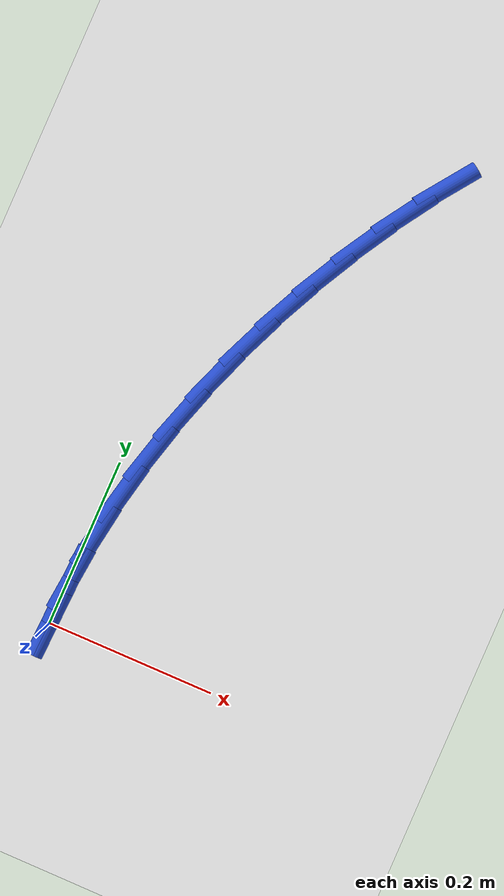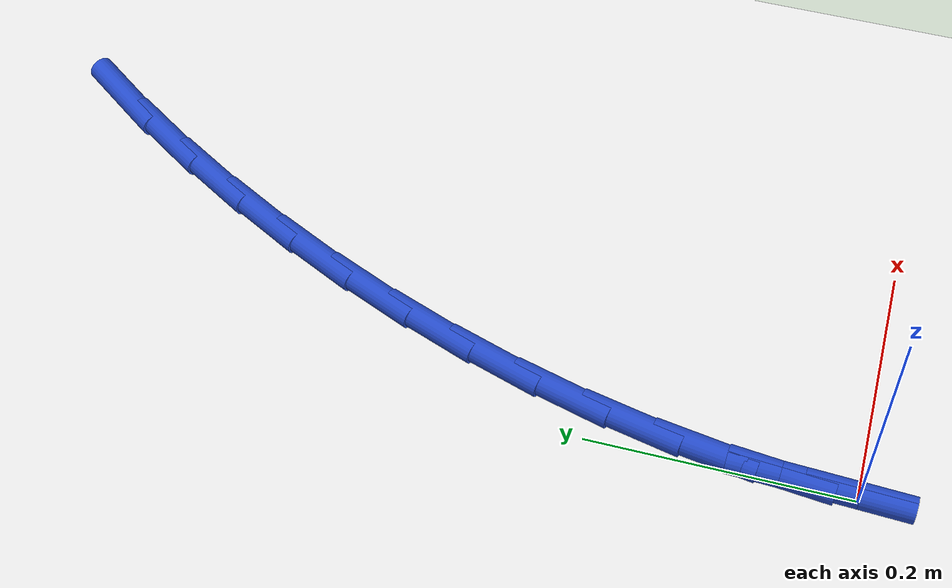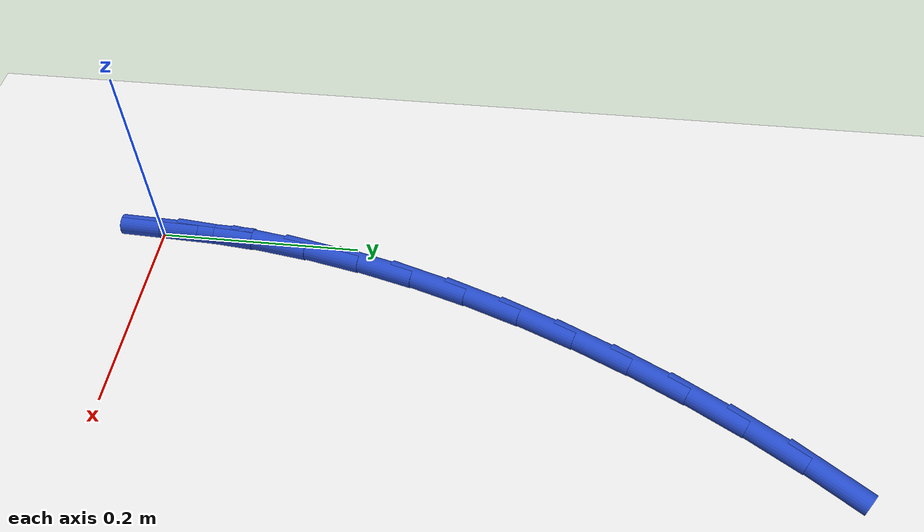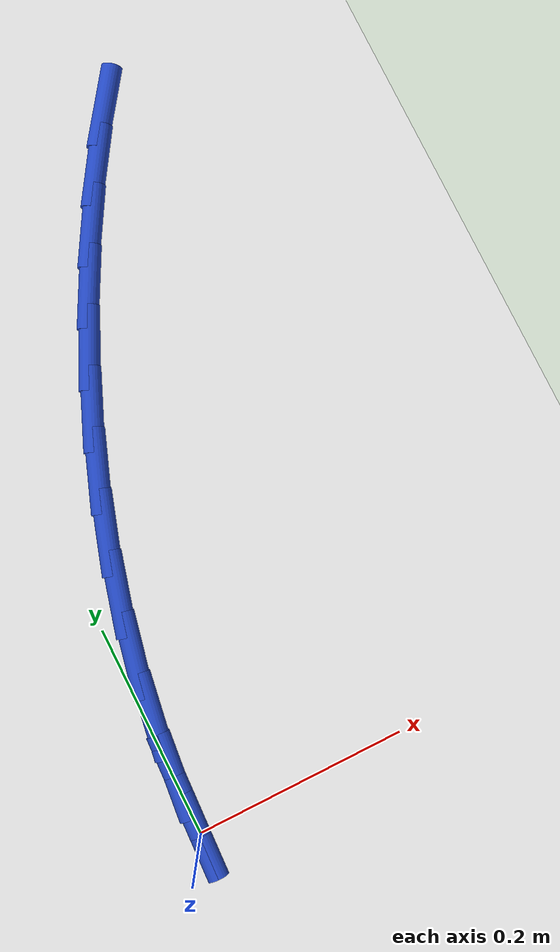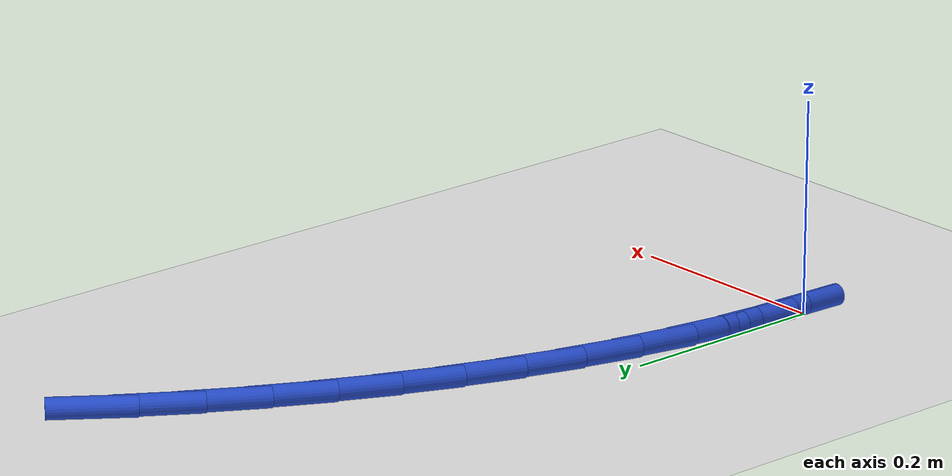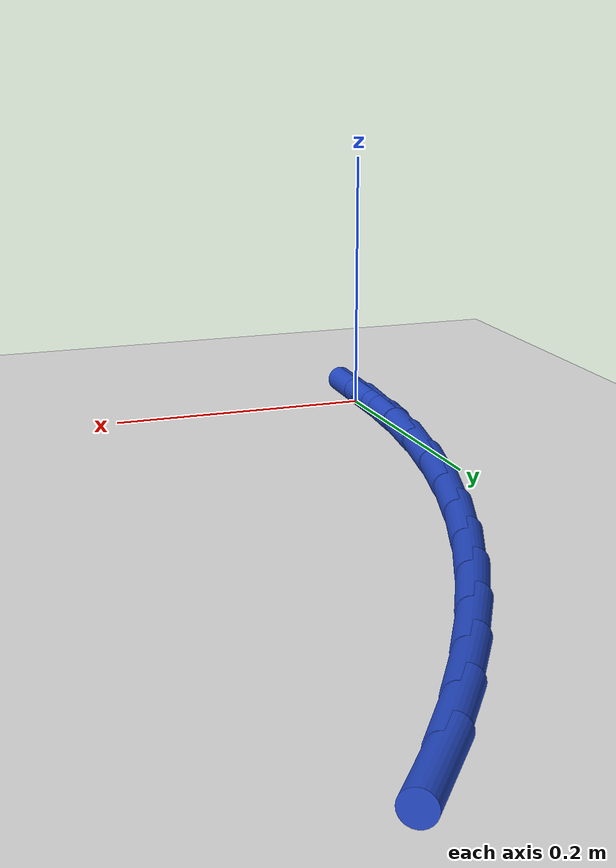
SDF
<sdf version="1.6">
 <world name="default">
  <model name="ground_plane">
   <static>1</static>
   <link name="link">
    <collision name="collision">
     <geometry><plane><normal>0 0 1</normal><size>100 100</size></plane></geometry>
     <surface><friction><ode><mu>100</mu><mu2>50</mu2></ode></friction></surface>
    </collision>
    <visual name="visual">
     <cast_shadows>0</cast_shadows>
     <geometry><plane><normal>0 0 1</normal><size>100 100</size></plane></geometry>
     <material>
      <script><uri>file://media/materials/scripts/gazebo.material</uri><name>Gazebo/WhiteGlow</name></script>
     </material>
    </visual>
   </link>
  </model>
  <model name="line">
   <link name="link_0">
    <pose>-3.122502256758253e-17 2.7755575615628914e-17 0.01 0 1.57 1.5284462924580036</pose>
    <collision name="collision">
     <geometry><cylinder><radius>0.01</radius><length>0.08</length></cylinder></geometry>
    </collision>
    <visual name="visual">
     <material>
      <script><name>Gazebo/Blue</name><uri>file://media/materials/scripts/gazebo.material</uri></script>
     </material>
     <geometry><cylinder><radius>0.01</radius><length>0.08</length></cylinder></geometry>
    </visual>
   </link>
   <link name="link_1">
    <pose>0.0023922356852476684 0.05645344503621586 0.01 0 1.57 1.4703176909220992</pose>
    <collision name="collision">
     <geometry><cylinder><radius>0.01</radius><length>0.08</length></cylinder></geometry>
    </collision>
    <visual name="visual">
     <material>
      <script><name>Gazebo/Blue</name><uri>file://media/materials/scripts/gazebo.material</uri></script>
     </material>
     <geometry><cylinder><radius>0.01</radius><length>0.08</length></cylinder></geometry>
    </visual>
   </link>
   <link name="link_2">
    <pose>0.008043382136585788 0.11250631319755652 0.01 0 1.57 1.4141630031374304</pose>
    <collision name="collision">
     <geometry><cylinder><radius>0.01</radius><length>0.08</length></cylinder></geometry>
    </collision>
    <visual name="visual">
     <material>
      <script><name>Gazebo/Blue</name><uri>file://media/materials/scripts/gazebo.material</uri></script>
     </material>
     <geometry><cylinder><radius>0.01</radius><length>0.08</length></cylinder></geometry>
    </visual>
   </link>
   <link name="link_3">
    <pose>0.016821708961617714 0.16809103666008823 0.01 0 1.57 1.3600927635448263</pose>
    <collision name="collision">
     <geometry><cylinder><radius>0.01</radius><length>0.08</length></cylinder></geometry>
    </collision>
    <visual name="visual">
     <material>
      <script><name>Gazebo/Blue</name><uri>file://media/materials/scripts/gazebo.material</uri></script>
     </material>
     <geometry><cylinder><radius>0.01</radius><length>0.08</length></cylinder></geometry>
    </visual>
   </link>
   <link name="link_4">
    <pose>0.0285954857679468 0.22314004759987707 0.01 0 1.57 1.3081607448945218</pose>
    <collision name="collision">
     <geometry><cylinder><radius>0.01</radius><length>0.08</length></cylinder></geometry>
    </collision>
    <visual name="visual">
     <material>
      <script><name>Gazebo/Blue</name><uri>file://media/materials/scripts/gazebo.material</uri></script>
     </material>
     <geometry><cylinder><radius>0.01</radius><length>0.08</length></cylinder></geometry>
    </visual>
   </link>
   <link name="link_5">
    <pose>0.043232982163176406 0.27758577819298924 0.01 0 1.57 1.2583710776866852</pose>
    <collision name="collision">
     <geometry><cylinder><radius>0.01</radius><length>0.08</length></cylinder></geometry>
    </collision>
    <visual name="visual">
     <material>
      <script><name>Gazebo/Blue</name><uri>file://media/materials/scripts/gazebo.material</uri></script>
     </material>
     <geometry><cylinder><radius>0.01</radius><length>0.08</length></cylinder></geometry>
    </visual>
   </link>
   <link name="link_6">
    <pose>0.06060246775490992 0.3313606606154909 0.01 0 1.57 1.2106862219870136</pose>
    <collision name="collision">
     <geometry><cylinder><radius>0.01</radius><length>0.08</length></cylinder></geometry>
    </collision>
    <visual name="visual">
     <material>
      <script><name>Gazebo/Blue</name><uri>file://media/materials/scripts/gazebo.material</uri></script>
     </material>
     <geometry><cylinder><radius>0.01</radius><length>0.08</length></cylinder></geometry>
    </visual>
   </link>
   <link name="link_7">
    <pose>0.08057221215075068 0.3843971270434482 0.01 0 1.57 1.1650349696839493</pose>
    <collision name="collision">
     <geometry><cylinder><radius>0.01</radius><length>0.08</length></cylinder></geometry>
    </collision>
    <visual name="visual">
     <material>
      <script><name>Gazebo/Blue</name><uri>file://media/materials/scripts/gazebo.material</uri></script>
     </material>
     <geometry><cylinder><radius>0.01</radius><length>0.08</length></cylinder></geometry>
    </visual>
   </link>
   <link name="link_8">
    <pose>0.10301048495830205 0.4366276096529273 0.01 0 1.57 1.1213198958307746</pose>
    <collision name="collision">
     <geometry><cylinder><radius>0.01</radius><length>0.08</length></cylinder></geometry>
    </collision>
    <visual name="visual">
     <material>
      <script><name>Gazebo/Blue</name><uri>file://media/materials/scripts/gazebo.material</uri></script>
     </material>
     <geometry><cylinder><radius>0.01</radius><length>0.08</length></cylinder></geometry>
    </visual>
   </link>
   <link name="link_9">
    <pose>0.12778555578516743 0.4879845406199943 0.01 0 1.57 1.0791529368352972</pose>
    <collision name="collision">
     <geometry><cylinder><radius>0.01</radius><length>0.08</length></cylinder></geometry>
    </collision>
    <visual name="visual">
     <material>
      <script><name>Gazebo/Blue</name><uri>file://media/materials/scripts/gazebo.material</uri></script>
     </material>
     <geometry><cylinder><radius>0.01</radius><length>0.08</length></cylinder></geometry>
    </visual>
   </link>
   <link name="link_10">
    <pose>0.15477623364643142 0.5383872119481492 0.01 0 1.57 1.0361008590012952</pose>
    <collision name="collision">
     <geometry><cylinder><radius>0.01</radius><length>0.08</length></cylinder></geometry>
    </collision>
    <visual name="visual">
     <material>
      <script><name>Gazebo/Blue</name><uri>file://media/materials/scripts/gazebo.material</uri></script>
     </material>
     <geometry><cylinder><radius>0.01</radius><length>0.08</length></cylinder></geometry>
    </visual>
   </link>
   <link name="link_11">
    <pose>0.1839490683964847 0.5876455233651288 0.01 0 1.57 0.9907605079044933</pose>
    <collision name="collision">
     <geometry><cylinder><radius>0.01</radius><length>0.08</length></cylinder></geometry>
    </collision>
    <visual name="visual">
     <material>
      <script><name>Gazebo/Blue</name><uri>file://media/materials/scripts/gazebo.material</uri></script>
     </material>
     <geometry><cylinder><radius>0.01</radius><length>0.08</length></cylinder></geometry>
    </visual>
   </link>
   <link name="link_12">
    <pose>0.21531414944209873 0.6355150909747794 0.01 0 1.57 0.9428278914797885</pose>
    <collision name="collision">
     <geometry><cylinder><radius>0.01</radius><length>0.08</length></cylinder></geometry>
    </collision>
    <visual name="visual">
     <material>
      <script><name>Gazebo/Blue</name><uri>file://media/materials/scripts/gazebo.material</uri></script>
     </material>
     <geometry><cylinder><radius>0.01</radius><length>0.08</length></cylinder></geometry>
    </visual>
   </link>
   <link name="link_120">
    <pose>-2.7755575615628914e-17 9.71445146547012e-17 0.01 0 1.57 1.5279405293922594</pose>
    <collision name="collision">
     <geometry><cylinder><radius>0.01</radius><length>0.08</length></cylinder></geometry>
    </collision>
    <visual name="visual">
     <material>
      <script><name>Gazebo/Blue</name><uri>file://media/materials/scripts/gazebo.material</uri></script>
     </material>
     <geometry><cylinder><radius>0.01</radius><length>0.08</length></cylinder></geometry>
    </visual>
   </link>
   <link name="link_121">
    <pose>0.002419293601348283 0.05641739179621455 0.01 0 1.57 1.5279405293922594</pose>
    <collision name="collision">
     <geometry><cylinder><radius>0.01</radius><length>0.08</length></cylinder></geometry>
    </collision>
    <visual name="visual">
     <material>
      <script><name>Gazebo/Blue</name><uri>file://media/materials/scripts/gazebo.material</uri></script>
     </material>
     <geometry><cylinder><radius>0.01</radius><length>0.08</length></cylinder></geometry>
    </visual>
   </link>
  </model>
 </world>
</sdf>
